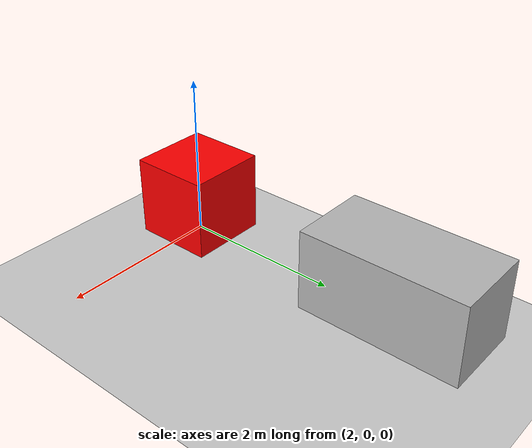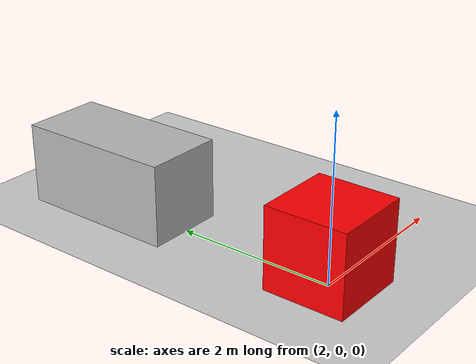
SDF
<?xml version="1.0" ?>
<sdf version="1.9">
  <world name="obstacle_world">
    <!-- ground -->
    <model name="ground_plane">
      <static>true</static>
      <link name="link">
        <collision name="collision">
          <geometry>
            <plane>
              <normal>0 0 1</normal>
              <size>100 100</size>
            </plane>
          </geometry>
        </collision>
        <visual name="visual">
          <geometry>
            <plane>
              <normal>0 0 1</normal>
              <size>100 100</size>
            </plane>
          </geometry>
          <material>
            <diffuse>0.8 0.8 0.8 1</diffuse>
          </material>
        </visual>
      </link>
    </model>

    <!-- light -->
    <light type="directional" name="sun">
      <cast_shadows>true</cast_shadows>
      <pose>0 0 10 0 0 0</pose>
      <diffuse>0.8 0.8 0.8 1</diffuse>
      <specular>0.2 0.2 0.2 1</specular>
      <direction>-0.5 0.1 -0.9</direction>
    </light>

    <!-- 几个箱子做障碍物 -->
    <model name="box1">
      <pose>2 0 0.5 0 0 0</pose>
      <link name="link">
        <visual name="visual">
          <geometry><box><size>1 1 1</size></box></geometry>
          <material><diffuse>1 0 0 1</diffuse></material>
        </visual>
        <collision name="collision">
          <geometry><box><size>1 1 1</size></box></geometry>
        </collision>
      </link>
    </model>

    <model name="box2">
      <pose>2 3 0.5 0 0 0</pose>
      <link name="link">
        <visual name="visual">
          <geometry><box><size>1 2 1</size></box></geometry>
        </visual>
        <collision name="collision">
          <geometry><box><size>1 2 1</size></box>
          </geometry>
        </collision>
      </link>
    </model>
  </world>
</sdf>
